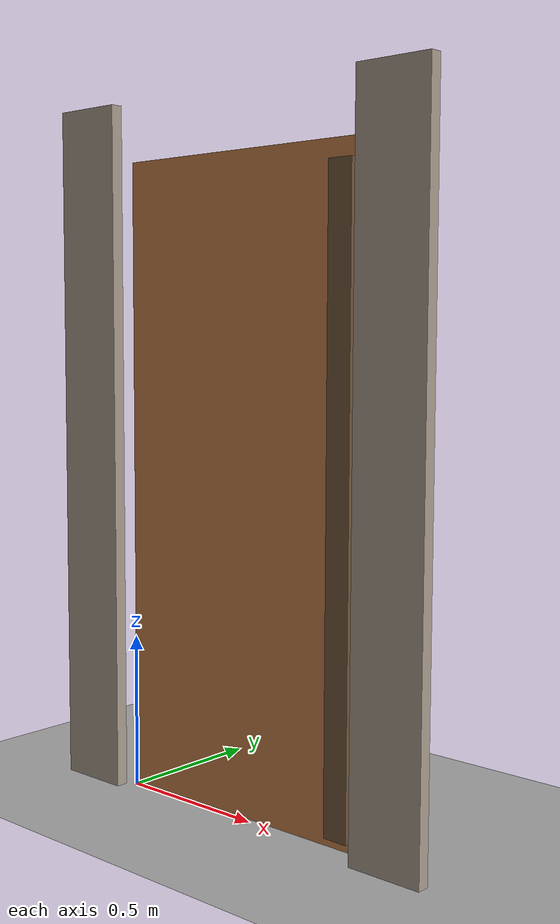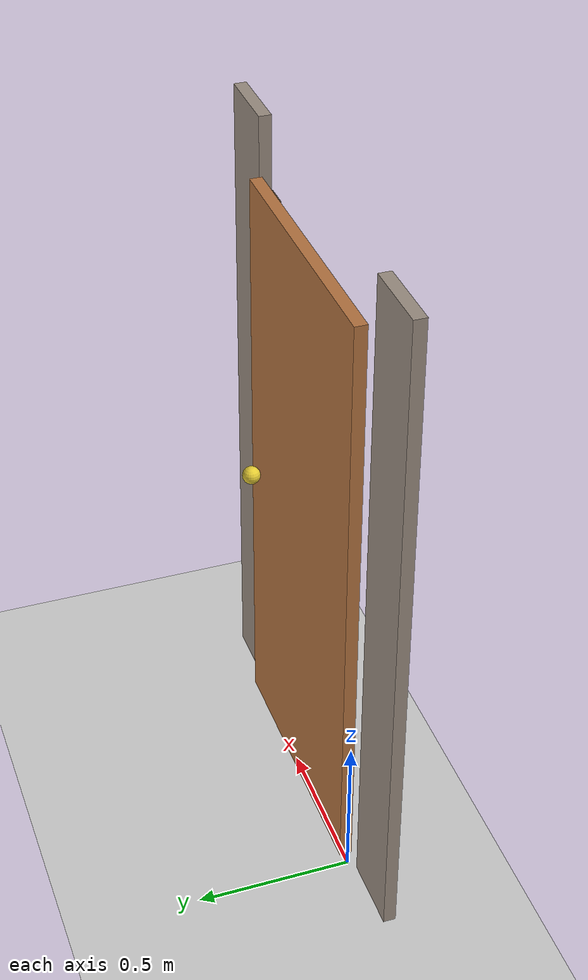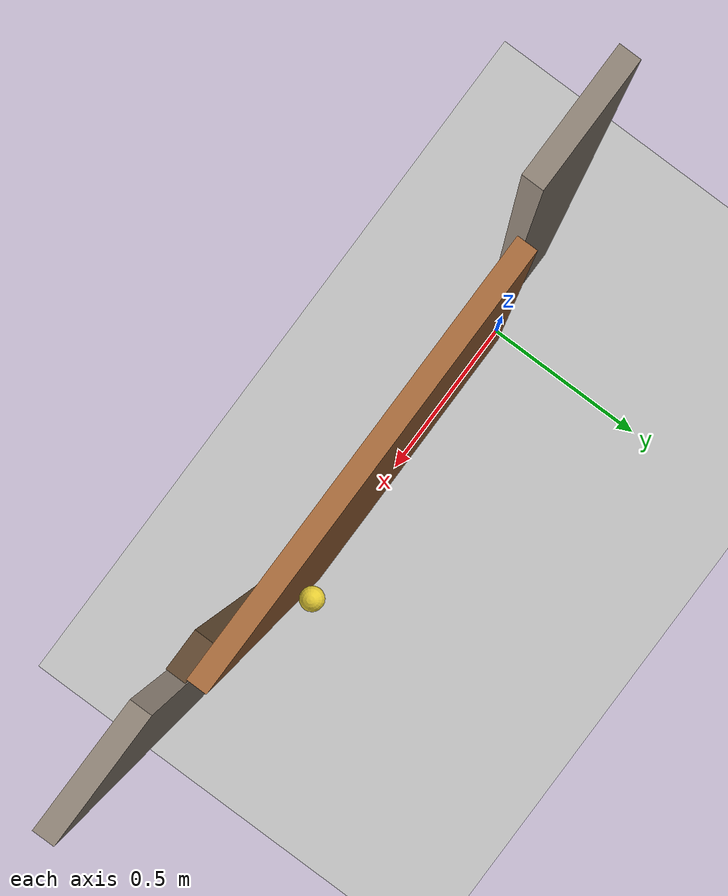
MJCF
<mujoco model="swinging_door">
  <compiler angle="radian"/>
  <option timestep="0.002" gravity="0 0 -9.81"/>
  <worldbody>
    <light name="sun" pos="0 0 4" dir="0 0 -1" directional="true"/>
    <geom name="floor" type="plane" size="5 5 0.1" rgba="0.8 0.8 0.8 1"/>
    <geom name="wall_left" type="box" pos="-0.15 -0.04 1.1" size="0.12 0.02 1.1" rgba="0.6 0.55 0.5 1"/>
    <geom name="wall_right" type="box" pos="1.05 -0.04 1.1" size="0.12 0.02 1.1" rgba="0.6 0.55 0.5 1"/>
    <geom name="jamb" type="box" pos="0.88 -0.04 1.01" size="0.04 0.02 0.95" rgba="0.4 0.3 0.2 1"/>
    <body name="door" pos="0 0 0">
      <joint name="hinge" type="hinge" axis="0 0 1" pos="0 0 0" limited="true" range="0 1.7" stiffness="20" springref="-0.1" damping="6" solreflimit="0.01 1"/>
      <geom name="door_panel" type="box" pos="0.46 0 1.02" size="0.44 0.02 1.0" mass="20" rgba="0.7 0.45 0.25 1"/>
      <geom name="door_knob" type="sphere" pos="0.82 0.05 1.0" size="0.03" mass="0.2" rgba="0.9 0.8 0.2 1"/>
    </body>
  </worldbody>
  <keyframe>
    <key name="start" qpos="1.4" qvel="0"/>
  </keyframe>
</mujoco>
